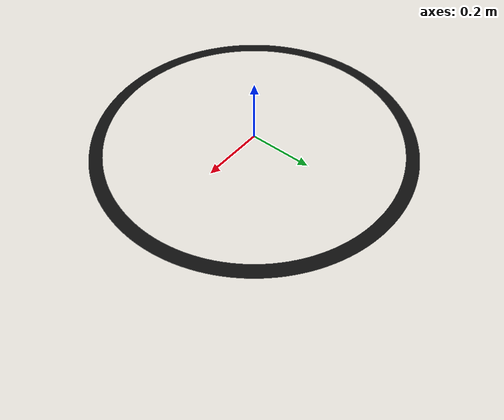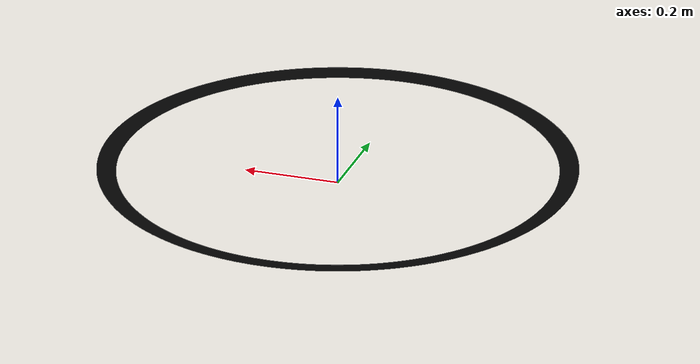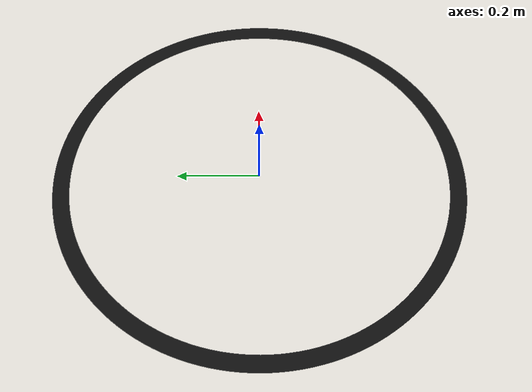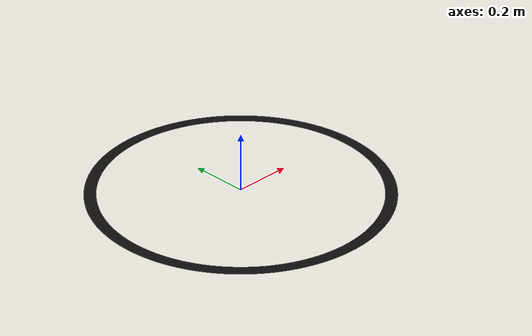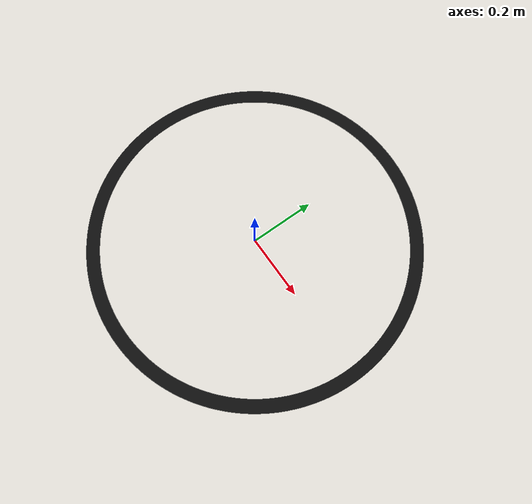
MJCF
<mujoco model="CircleTrack">
  <asset>
    <mesh name="CircleTrack" file="../../objects/tracks/CircleTrack.obj" inertia="shell"
          scale="1 1 1"/>
  </asset>
  <worldbody>
    <geom name="line_CircleTrack" type="mesh" mesh="CircleTrack" quat="1 0 0 0"
          pos="-0.0000 -0.0000 0.002"
          contype="0" conaffinity="0" group="2" rgba="0.05 0.05 0.05 1"/>
  </worldbody>
</mujoco>
